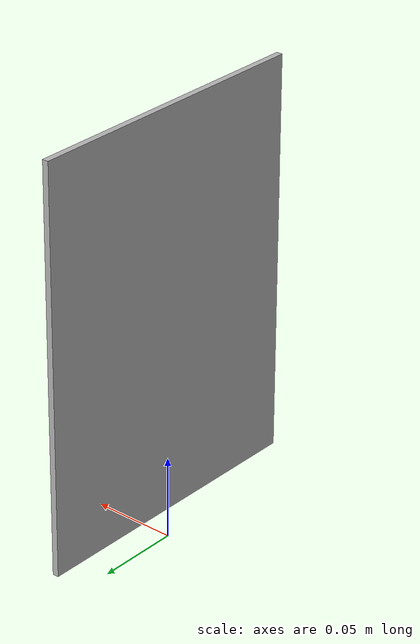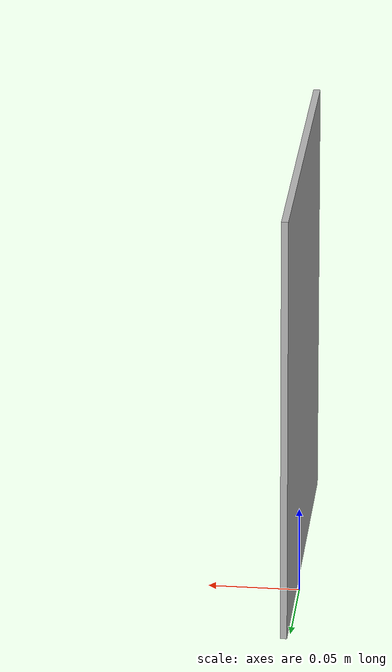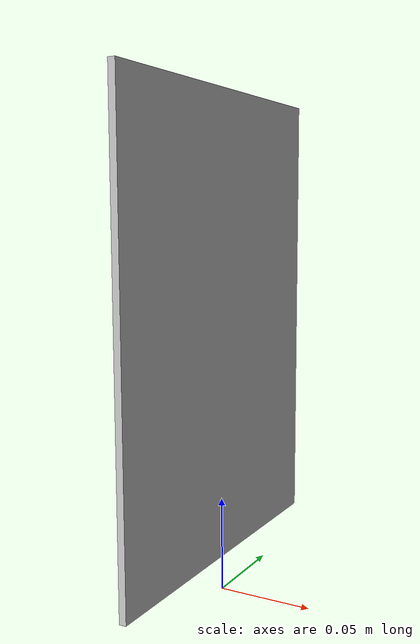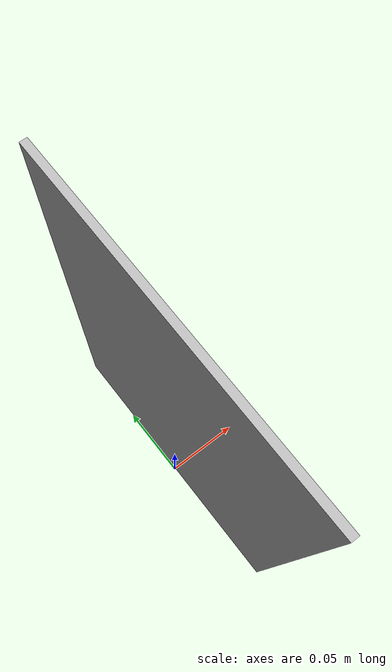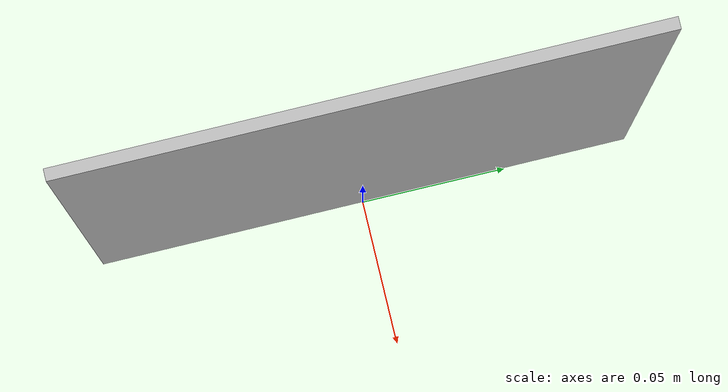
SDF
<?xml version="1.0" ?>
<sdf version="1.5">
  <model name="sign_do_not_enter">
    <static>true</static>
    <link name="link">
      <pose>0 0 0.14 0 0 0</pose>
      <visual name="visual">
        <cast_shadows>false</cast_shadows>
        <geometry>
          <box>
            <size>0.003668 0.181404 0.2404</size>
          </box>
        </geometry>
        <material>
          <script>
            <uri>model://sign_do_not_enter/materials/scripts</uri>
            <uri>model://sign_do_not_enter/materials/textures</uri>
            <name>do_not_enter</name>
          </script>
        </material>
      </visual>
    </link>
  </model>
</sdf>
